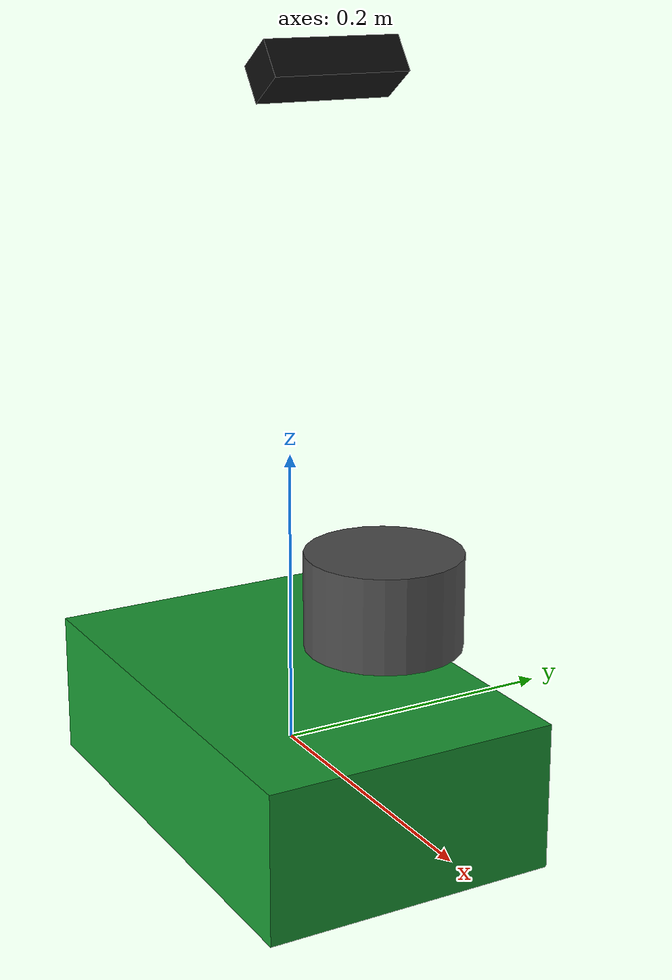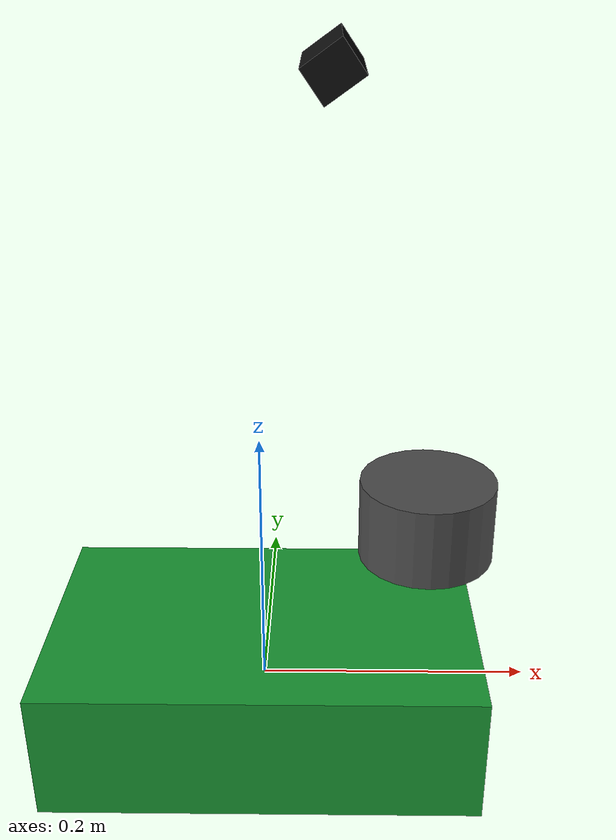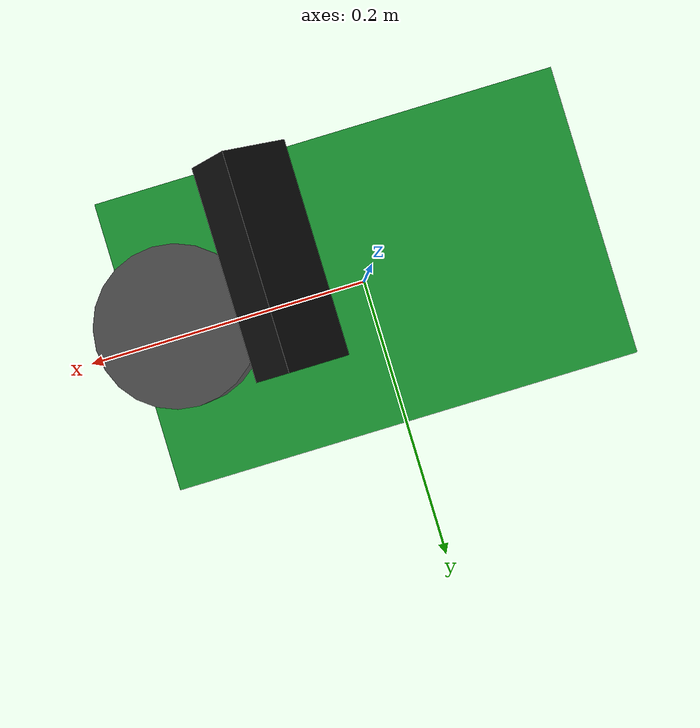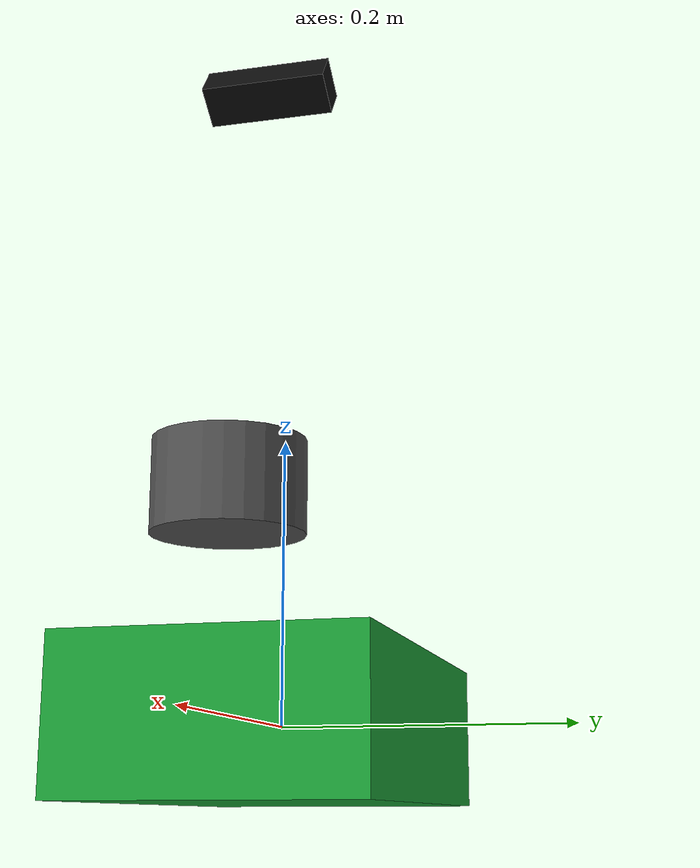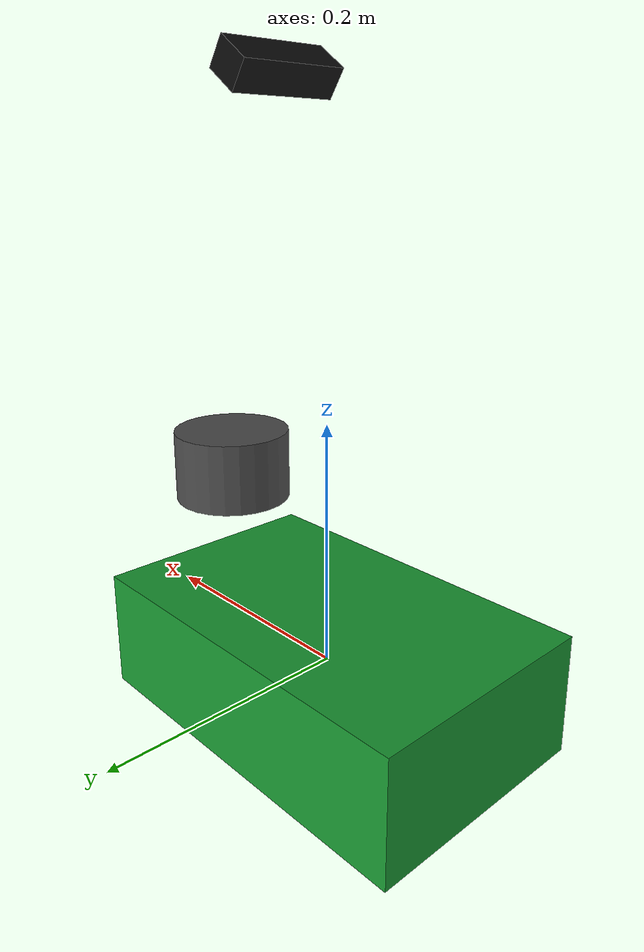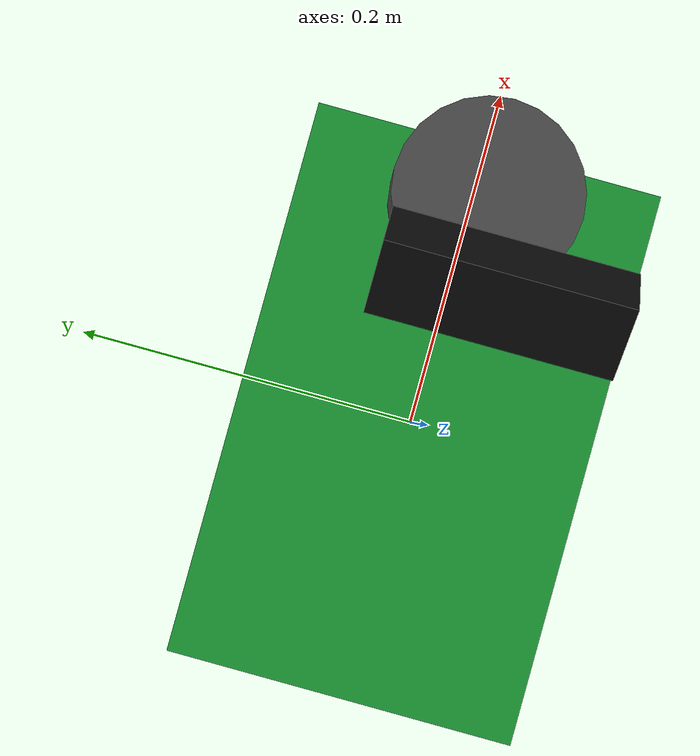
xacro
<?xml version="1.0"?>
<robot xmlns:xacro="http://www.ros.org/wiki/xacro" name="strawberry_amr_sim">

  <xacro:include filename="$(find robot_description)/urdf/strawberry_amr.urdf.xacro"/>

  <gazebo>
    <plugin name="ackermann_drive" filename="libgazebo_ros_ackermann_drive.so">
      <ros>
        <namespace></namespace>
        <remapping>cmd_vel:=cmd_vel</remapping>
        <remapping>odom:=wheel_odom</remapping>
        <remapping>distance:=distance</remapping>
      </ros>

      <update_rate>50</update_rate>

      <!-- drive (rear) wheels -->
      <left_joint>rear_left_wheel_joint</left_joint>
      <right_joint>rear_right_wheel_joint</right_joint>
      <!-- steering (front) knuckles -->
      <left_steering_joint>front_left_wheel_steer_joint</left_steering_joint>
      <right_steering_joint>front_right_wheel_steer_joint</right_steering_joint>
      <!-- free-spinning front wheel rotation (visual only, not driven) -->
      <right_steering_link_name>front_right_wheel_steer_link</right_steering_link_name>
      <left_steering_link_name>front_left_wheel_steer_link</left_steering_link_name>

      <!-- CAD-sourced geometry — MUST match strawberry_amr.urdf.xacro's
           xacro:property values; see docs/MOTOR_AND_GEOMETRY_VERIFICATION.md -->
      <max_steer>0.6</max_steer>            <!-- delta_max, rad -->
      <max_steering_angle>0.6</max_steering_angle>
      <wheel_separation>0.1685</wheel_separation>   <!-- rear_track -->
      <wheel_diameter>0.065</wheel_diameter>
      <wheelbase>0.2353</wheelbase>

      <max_wheel_torque>2.0</max_wheel_torque>
      <max_wheel_acceleration>3.0</max_wheel_acceleration>

      <publish_odom>true</publish_odom>
      <publish_odom_tf>false</publish_odom_tf>       <!-- EKF owns this, see above -->
      <publish_wheel_tf>true</publish_wheel_tf>

      <odometry_frame>odom</odometry_frame>
      <robot_base_frame>base_link</robot_base_frame>
    </plugin>
  </gazebo>

  <!-- ==== LiDAR (mimics RPLIDAR A1M8: 360 deg, ~12m, ~1 deg resolution —        see docs/MOTOR_AND_GEOMETRY_VERIFICATION.md for the real specs this
       approximates) ==== -->
  <gazebo reference="laser">
    <sensor type="ray" name="lidar_sensor">
      <pose>0 0 0 0 0 0</pose>
      <visualize>false</visualize>
      <update_rate>10</update_rate>
      <ray>
        <scan>
          <horizontal>
            <samples>360</samples>
            <resolution>1</resolution>
            <min_angle>-3.14159</min_angle>
            <max_angle>3.14159</max_angle>
          </horizontal>
        </scan>
        <range>
          <min>0.15</min>
          <max>12.0</max>
          <resolution>0.01</resolution>
        </range>
        <noise>
          <type>gaussian</type>
          <mean>0.0</mean>
          <stddev>0.01</stddev>
        </noise>
      </ray>
      <plugin name="lidar_plugin" filename="libgazebo_ros_ray_sensor.so">
        <ros>
          <remapping>~/out:=scan</remapping>
        </ros>
        <output_type>sensor_msgs/LaserScan</output_type>
        <frame_name>laser</frame_name>
      </plugin>
    </sensor>
  </gazebo>

  <!-- ==== RGB-D camera (mimics Orbbec Astra Pro Plus: colour + depth,
       registered) ==== -->
  <gazebo reference="camera_link">
    <sensor type="depth" name="camera_sensor">
      <update_rate>15</update_rate>
      <camera>
        <horizontal_fov>1.047</horizontal_fov>
        <image><width>640</width><height>480</height><format>R8G8B8</format></image>
        <clip><near>0.1</near><far>8.0</far></clip>
      </camera>
      <plugin name="camera_plugin" filename="libgazebo_ros_camera.so">
        <ros>
          <namespace>camera</namespace>
        </ros>
        <camera_name>camera</camera_name>
        <frame_name>camera_link</frame_name>
        <!-- topic names chosen to match sensor_bringup/camera.launch.py's
             real Astra driver topics exactly, so plant_perception needs
             no remapping between sim and real hardware -->
        <image_topic_name>color/image_raw</image_topic_name>
        <camera_info_topic_name>color/camera_info</camera_info_topic_name>
        <depth_image_topic_name>depth/image_raw</depth_image_topic_name>
        <depth_image_camera_info_topic_name>depth/camera_info</depth_image_camera_info_topic_name>
        <point_cloud_topic_name>depth/points</point_cloud_topic_name>
        <hack_baseline>0.07</hack_baseline>
      </plugin>
    </sensor>
  </gazebo>

  <gazebo reference="imu_link">
    <sensor type="imu" name="imu_sensor">
      <update_rate>50</update_rate>
      <plugin name="imu_plugin" filename="libgazebo_ros_imu_sensor.so">
        <ros>
          <remapping>~/out:=imu/data_raw</remapping>
        </ros>
        <frame_name>imu_link</frame_name>
      </plugin>
    </sensor>
  </gazebo>

</robot>

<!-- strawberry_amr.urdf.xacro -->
<robot name="strawberry_amr" xmlns:xacro="http://ros.org/wiki/xacro">

  <xacro:property name="wheelbase"    value="0.2353"/>  <!-- L, CAD-sourced (see header) -->
  <xacro:property name="front_track"  value="0.130"/>   <!-- CAD-sourced (see header) -->
  <xacro:property name="rear_track"   value="0.1685"/>  <!-- CAD-sourced (see header) -->
  <xacro:property name="wheel_r"      value="0.0325"/>  <!-- 65mm tyre, corroborated by Yahboom Q&A -->
  <xacro:property name="wheel_w"      value="0.026"/>
  <xacro:property name="max_steer"    value="0.6"/>     <!-- delta_max, CAD joint limit (see header) -->

  <!-- body envelope: ESTIMATE, see header note -->
  <xacro:property name="base_len"     value="0.320"/>
  <xacro:property name="base_wid"     value="0.200"/>
  <xacro:property name="base_hgt"     value="0.100"/>
  <xacro:property name="clearance"    value="0.020"/>
  <xacro:property name="total_mass"   value="2.76"/>    <!-- verified system mass budget -->

  <!-- sensor mounts (EDIT after calibration on the real chassis) -->
  <xacro:property name="lidar_x"      value="0.120"/>
  <xacro:property name="lidar_z"      value="0.140"/>
  <xacro:property name="imu_z"        value="0.050"/>
  <xacro:property name="mast_x"       value="0.050"/>
  <xacro:property name="mast_z"       value="0.450"/>   <!-- camera height on mast -->
  <xacro:property name="cam_tilt"     value="0.61"/>    <!-- ~35 deg UP toward overhead fruit -->

  <material name="grey"><color rgba="0.3 0.3 0.3 1"/></material>
  <material name="black"><color rgba="0.05 0.05 0.05 1"/></material>
  <material name="green"><color rgba="0.1 0.6 0.2 1"/></material>
  <material name="red"><color rgba="0.7 0.1 0.1 1"/></material>

  <!-- ===== base ===== -->
  <!-- base_link origin = wheelbase midpoint, ground-projected at base_footprint -->
  <link name="base_link">
    <visual>
      <geometry><box size="${base_len} ${base_wid} ${base_hgt}"/></geometry>
      <material name="green"/>
    </visual>
    <collision>
      <geometry><box size="${base_len} ${base_wid} ${base_hgt}"/></geometry>
    </collision>
    <inertial>
      <mass value="${total_mass - 4*0.10}"/>  <!-- body mass = total minus 4 wheels (approx 0.10 kg each: motor+tyre+hub) -->
      <inertia ixx="0.012" ixy="0" ixz="0" iyy="0.020" iyz="0" izz="0.025"/>
    </inertial>
  </link>

  <link name="base_footprint"/>
  <joint name="base_footprint_joint" type="fixed">
    <parent link="base_link"/>
    <child link="base_footprint"/>
    <origin xyz="0 0 ${-(base_hgt/2 + clearance + wheel_r - base_hgt/2)}"/>
  </joint>

  <xacro:macro name="wheel_visual" params="name">
    <link name="${name}">
      <visual>
        <origin rpy="1.5708 0 0"/>
        <geometry><cylinder radius="${wheel_r}" length="${wheel_w}"/></geometry>
        <material name="black"/>
      </visual>
      <collision>
        <origin rpy="1.5708 0 0"/>
        <geometry><cylinder radius="${wheel_r}" length="${wheel_w}"/></geometry>
      </collision>
      <inertial>
        <mass value="0.10"/>
        <inertia ixx="0.00006" ixy="0" ixz="0" iyy="0.00006" iyz="0" izz="0.00010"/>
      </inertial>
    </link>
  </xacro:macro>

  <!-- REAR wheels: driven, fixed steering (continuous spin only) -->
  <xacro:macro name="rear_wheel" params="name y">
    <xacro:wheel_visual name="${name}"/>
    <joint name="${name}_joint" type="continuous">
      <parent link="base_link"/>
      <child link="${name}"/>
      <origin xyz="${-wheelbase/2} ${y} ${-(base_hgt/2 - wheel_r)}" rpy="0 0 0"/>
      <axis xyz="0 1 0"/>
    </joint>
  </xacro:macro>
  <xacro:rear_wheel name="rear_left_wheel"  y="${ rear_track/2}"/>
  <xacro:rear_wheel name="rear_right_wheel" y="${-rear_track/2}"/>

  <!-- FRONT wheels: steering knuckle (revolute, +/- max_steer) -> wheel (continuous) -->
  <xacro:macro name="front_wheel" params="name y">
    <link name="${name}_steer_link">
      <inertial>
        <mass value="0.02"/>
        <inertia ixx="0.000005" ixy="0" ixz="0" iyy="0.000005" iyz="0" izz="0.000005"/>
      </inertial>
    </link>
    <joint name="${name}_steer_joint" type="revolute">
      <parent link="base_link"/>
      <child link="${name}_steer_link"/>
      <origin xyz="${wheelbase/2} ${y} ${-(base_hgt/2 - wheel_r)}" rpy="0 0 0"/>
      <axis xyz="0 0 1"/>
      <limit lower="${-max_steer}" upper="${max_steer}" effort="2.0" velocity="3.0"/>
    </joint>
    <xacro:wheel_visual name="${name}"/>
    <joint name="${name}_joint" type="continuous">
      <parent link="${name}_steer_link"/>
      <child link="${name}"/>
      <origin xyz="0 0 0" rpy="0 0 0"/>
      <axis xyz="0 1 0"/>
    </joint>
  </xacro:macro>
  <xacro:front_wheel name="front_left_wheel"  y="${ front_track/2}"/>
  <xacro:front_wheel name="front_right_wheel" y="${-front_track/2}"/>

  <link name="laser">
    <visual>
      <geometry><cylinder radius="0.049" length="0.060"/></geometry>
      <material name="grey"/>
    </visual>
  </link>
  <joint name="laser_joint" type="fixed">
    <parent link="base_link"/>
    <child link="laser"/>
    <origin xyz="${lidar_x} 0 ${lidar_z}"/>
  </joint>

  <!-- ===== IMU (MPU-9250, onboard the YB-ERF01-V2.0 over I2C) ===== -->
  <link name="imu_link"/>
  <joint name="imu_joint" type="fixed">
    <parent link="base_link"/>
    <child link="imu_link"/>
    <origin xyz="0 0 ${imu_z}"/>
  </joint>

  <!-- ===== camera mast, tilted UP toward overhead fruit ===== -->
  <link name="camera_link">
    <visual>
      <geometry><box size="0.03 0.09 0.025"/></geometry>
      <material name="black"/>
    </visual>
  </link>
  <joint name="camera_joint" type="fixed">
    <parent link="base_link"/>
    <child link="camera_link"/>
    <!-- negative pitch tilts the optical axis upward -->
    <origin xyz="${mast_x} 0 ${mast_z}" rpy="0 ${-cam_tilt} 0"/>
  </joint>

  <!-- optical frame (REP-103: z forward, x right, y down) -->
  <link name="camera_depth_optical_frame"/>
  <joint name="camera_depth_optical_joint" type="fixed">
    <parent link="camera_link"/>
    <child link="camera_depth_optical_frame"/>
    <origin xyz="0 0 0" rpy="-1.5708 0 -1.5708"/>
  </joint>

</robot>
